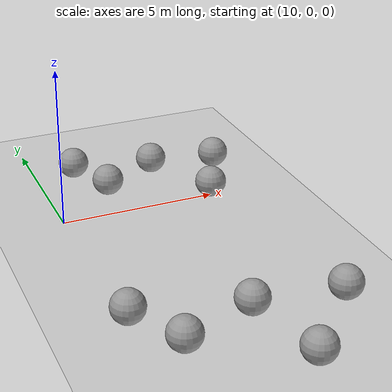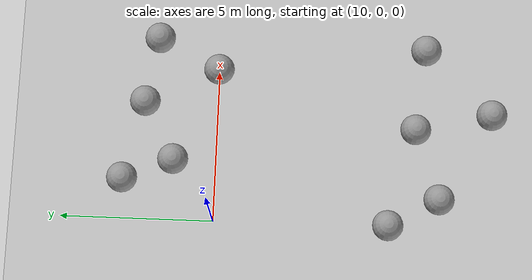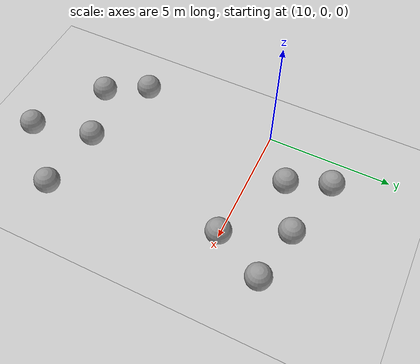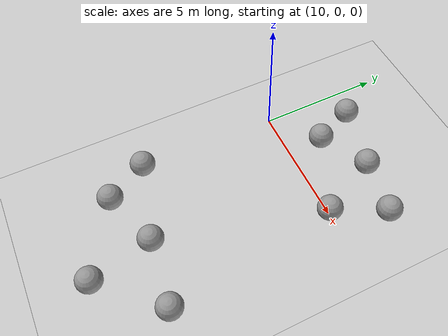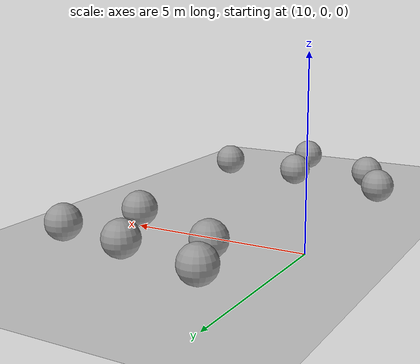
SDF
<sdf version="1.6">
 <world name="default">
  <model name="ground_plane">
   <static>1</static>
   <link name="link">
    <collision name="collision">
     <geometry><plane><normal>0 0 1</normal><size>100 100</size></plane></geometry>
     <surface><friction><ode><mu>100</mu><mu2>50</mu2></ode></friction></surface>
    </collision>
    <visual name="visual">
     <cast_shadows>0</cast_shadows>
     <geometry><plane><normal>0 0 1</normal><size>100 100</size></plane></geometry>
     <material>
      <script><uri>file://media/materials/scripts/gazebo.material</uri><name>Gazebo/Grey</name></script>
     </material>
    </visual>
   </link>
  </model>
  <model name="unit_sphere_0_clone_1">
   <pose>10.0198 -5.65385 0.5 0 -0 0</pose>
   <link name="link">
    <inertial>
     <mass>1</mass>
     <inertia><ixx>0.1</ixx><ixy>0</ixy><ixz>0</ixz><iyy>0.1</iyy><iyz>0</iyz><izz>0.1</izz></inertia>
    </inertial>
    <collision name="collision"><geometry><sphere><radius>0.5</radius></sphere></geometry></collision>
    <visual name="visual">
     <geometry><sphere><radius>0.5</radius></sphere></geometry>
     <material>
      <script><name>Gazebo/Grey</name><uri>file://media/materials/scripts/gazebo.material</uri></script>
     </material>
    </visual>
   </link>
  </model>
  <model name="unit_sphere_0_clone_2">
   <pose>10.9217 -7.29328 0.5 0 -0 0</pose>
   <link name="link">
    <inertial>
     <mass>1</mass>
     <inertia><ixx>0.1</ixx><ixy>0</ixy><ixz>0</ixz><iyy>0.1</iyy><iyz>0</iyz><izz>0.1</izz></inertia>
    </inertial>
    <collision name="collision"><geometry><sphere><radius>0.5</radius></sphere></geometry></collision>
    <visual name="visual">
     <geometry><sphere><radius>0.5</radius></sphere></geometry>
     <material>
      <script><name>Gazebo/Grey</name><uri>file://media/materials/scripts/gazebo.material</uri></script>
     </material>
    </visual>
   </link>
  </model>
  <model name="unit_sphere_0_clone_3">
   <pose>13.2089 -6.50721 0.5 0 -0 0</pose>
   <link name="link">
    <inertial>
     <mass>1</mass>
     <inertia><ixx>0.1</ixx><ixy>0</ixy><ixz>0</ixz><iyy>0.1</iyy><iyz>0</iyz><izz>0.1</izz></inertia>
    </inertial>
    <collision name="collision"><geometry><sphere><radius>0.5</radius></sphere></geometry></collision>
    <visual name="visual">
     <geometry><sphere><radius>0.5</radius></sphere></geometry>
     <material>
      <script><name>Gazebo/Grey</name><uri>file://media/materials/scripts/gazebo.material</uri></script>
     </material>
    </visual>
   </link>
  </model>
  <model name="unit_sphere_0_clone_4">
   <pose>13.7778 -8.99338 0.5 0 -0 0</pose>
   <link name="link">
    <inertial>
     <mass>1</mass>
     <inertia><ixx>0.1</ixx><ixy>0</ixy><ixz>0</ixz><iyy>0.1</iyy><iyz>0</iyz><izz>0.1</izz></inertia>
    </inertial>
    <collision name="collision"><geometry><sphere><radius>0.5</radius></sphere></geometry></collision>
    <visual name="visual">
     <geometry><sphere><radius>0.5</radius></sphere></geometry>
     <material>
      <script><name>Gazebo/Grey</name><uri>file://media/materials/scripts/gazebo.material</uri></script>
     </material>
    </visual>
   </link>
  </model>
  <model name="unit_sphere_0_clone_5">
   <pose>15.8904 -6.82279 0.5 0 -0 0</pose>
   <link name="link">
    <inertial>
     <mass>1</mass>
     <inertia><ixx>0.1</ixx><ixy>0</ixy><ixz>0</ixz><iyy>0.1</iyy><iyz>0</iyz><izz>0.1</izz></inertia>
    </inertial>
    <collision name="collision"><geometry><sphere><radius>0.5</radius></sphere></geometry></collision>
    <visual name="visual">
     <geometry><sphere><radius>0.5</radius></sphere></geometry>
     <material>
      <script><name>Gazebo/Grey</name><uri>file://media/materials/scripts/gazebo.material</uri></script>
     </material>
    </visual>
   </link>
  </model>
  <model name="unit_sphere_0_clone_10">
   <pose>11.2754 3.00631 0.5 0 -0 0</pose>
   <link name="link">
    <inertial>
     <mass>1</mass>
     <inertia><ixx>0.1</ixx><ixy>0</ixy><ixz>0</ixz><iyy>0.1</iyy><iyz>0</iyz><izz>0.1</izz></inertia>
    </inertial>
    <collision name="collision"><geometry><sphere><radius>0.5</radius></sphere></geometry></collision>
    <visual name="visual">
     <geometry><sphere><radius>0.5</radius></sphere></geometry>
     <material>
      <script><name>Gazebo/Grey</name><uri>file://media/materials/scripts/gazebo.material</uri></script>
     </material>
    </visual>
   </link>
  </model>
  <model name="unit_sphere_0_clone_11">
   <pose>11.9433 1.38371 0.5 0 -0 0</pose>
   <link name="link">
    <inertial>
     <mass>1</mass>
     <inertia><ixx>0.1</ixx><ixy>0</ixy><ixz>0</ixz><iyy>0.1</iyy><iyz>0</iyz><izz>0.1</izz></inertia>
    </inertial>
    <collision name="collision"><geometry><sphere><radius>0.5</radius></sphere></geometry></collision>
    <visual name="visual">
     <geometry><sphere><radius>0.5</radius></sphere></geometry>
     <material>
      <script><name>Gazebo/Grey</name><uri>file://media/materials/scripts/gazebo.material</uri></script>
     </material>
    </visual>
   </link>
  </model>
  <model name="unit_sphere_0_clone_12">
   <pose>13.8434 2.38423 0.5 0 -0 0</pose>
   <link name="link">
    <inertial>
     <mass>1</mass>
     <inertia><ixx>0.1</ixx><ixy>0</ixy><ixz>0</ixz><iyy>0.1</iyy><iyz>0</iyz><izz>0.1</izz></inertia>
    </inertial>
    <collision name="collision"><geometry><sphere><radius>0.5</radius></sphere></geometry></collision>
    <visual name="visual">
     <geometry><sphere><radius>0.5</radius></sphere></geometry>
     <material>
      <script><name>Gazebo/Grey</name><uri>file://media/materials/scripts/gazebo.material</uri></script>
     </material>
    </visual>
   </link>
  </model>
  <model name="unit_sphere_0_clone_13">
   <pose>15 0 0.5 0 -0 0</pose>
   <link name="link">
    <inertial>
     <mass>1</mass>
     <inertia><ixx>0.1</ixx><ixy>0</ixy><ixz>0</ixz><iyy>0.1</iyy><iyz>0</iyz><izz>0.1</izz></inertia>
    </inertial>
    <collision name="collision"><geometry><sphere><radius>0.5</radius></sphere></geometry></collision>
    <visual name="visual">
     <geometry><sphere><radius>0.5</radius></sphere></geometry>
     <material>
      <script><name>Gazebo/Grey</name><uri>file://media/materials/scripts/gazebo.material</uri></script>
     </material>
    </visual>
   </link>
  </model>
  <model name="unit_sphere_0_clone_14">
   <pose>16 2 0.5 0 -0 0</pose>
   <link name="link">
    <inertial>
     <mass>1</mass>
     <inertia><ixx>0.1</ixx><ixy>0</ixy><ixz>0</ixz><iyy>0.1</iyy><iyz>0</iyz><izz>0.1</izz></inertia>
    </inertial>
    <collision name="collision"><geometry><sphere><radius>0.5</radius></sphere></geometry></collision>
    <visual name="visual">
     <geometry><sphere><radius>0.5</radius></sphere></geometry>
     <material>
      <script><name>Gazebo/Grey</name><uri>file://media/materials/scripts/gazebo.material</uri></script>
     </material>
    </visual>
   </link>
  </model>
 </world>
</sdf>
